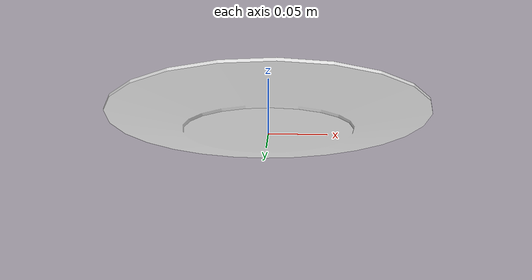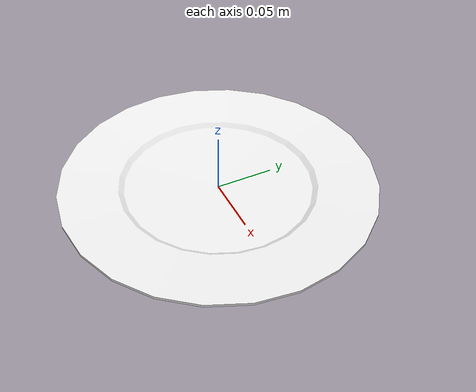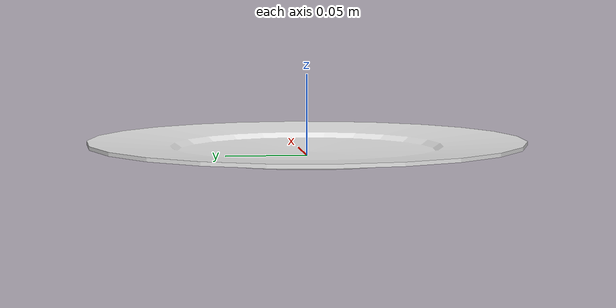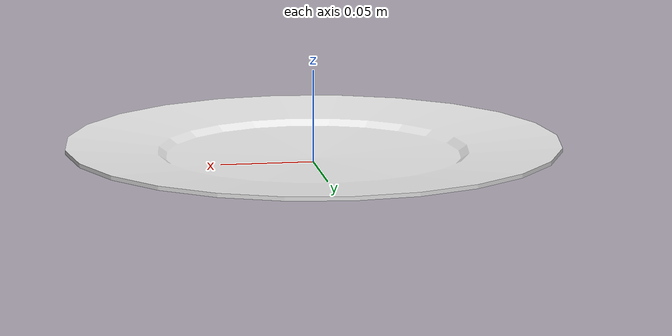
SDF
<?xml version='1.0'?>
<sdf version="1.4">
	<model name="plate">
		<static>1</static>
		<link name="link">
			<visual name="mesh">
				<geometry>
					<mesh>
						<uri>model://meshes/plate.dae</uri>
					</mesh>
				</geometry>
			</visual>
			<collision name="collider">
				<pose>0 0 0.005 0 0 0</pose>
				<geometry>
					<cylinder>
						<radius>0.133</radius>
						<length>0.011</length>
					</cylinder>
				</geometry>
			</collision>
		</link>
	</model>
</sdf>
